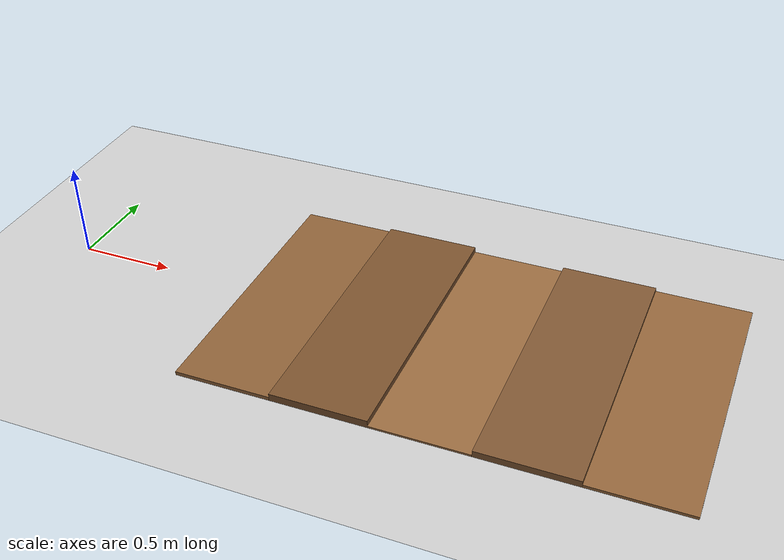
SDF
<?xml version="1.0"?>
<sdf version="1.6">
  <world name="uneven_10_40mm">
    <gravity>0 0 -9.81</gravity>
    <physics name="default_physics" default="0" type="ode">
      <max_step_size>0.001</max_step_size>
      <real_time_update_rate>1000</real_time_update_rate>
      <ode>
        <solver><type>quick</type><iters>100</iters><sor>1.3</sor><use_dynamic_moi_rescaling>true</use_dynamic_moi_rescaling></solver>
        <constraints><cfm>0.0</cfm><erp>0.2</erp><contact_max_correcting_vel>0.1</contact_max_correcting_vel><contact_surface_layer>0.001</contact_surface_layer></constraints>
      </ode>
    </physics>
    <include><uri>model://ground_plane</uri></include>
    <include><uri>model://sun</uri></include>
    <model name="uneven_20mm"><static>true</static><pose>1.25 0 0.010 0 0 0</pose><link name="link"><collision name="collision"><geometry><box><size>0.50 1.50 0.02</size></box></geometry></collision><visual name="visual"><geometry><box><size>0.50 1.50 0.02</size></box></geometry><material><ambient>0.55 0.38 0.22 1</ambient></material></visual></link></model>
    <model name="uneven_40mm"><static>true</static><pose>1.75 0 0.020 0 0 0</pose><link name="link"><collision name="collision"><geometry><box><size>0.50 1.50 0.04</size></box></geometry></collision><visual name="visual"><geometry><box><size>0.50 1.50 0.04</size></box></geometry><material><ambient>0.48 0.32 0.18 1</ambient></material></visual></link></model>
    <model name="uneven_10mm"><static>true</static><pose>2.25 0 0.005 0 0 0</pose><link name="link"><collision name="collision"><geometry><box><size>0.50 1.50 0.01</size></box></geometry></collision><visual name="visual"><geometry><box><size>0.50 1.50 0.01</size></box></geometry><material><ambient>0.60 0.42 0.25 1</ambient></material></visual></link></model>
    <model name="uneven_35mm"><static>true</static><pose>2.75 0 0.0175 0 0 0</pose><link name="link"><collision name="collision"><geometry><box><size>0.50 1.50 0.035</size></box></geometry></collision><visual name="visual"><geometry><box><size>0.50 1.50 0.035</size></box></geometry><material><ambient>0.50 0.34 0.20 1</ambient></material></visual></link></model>
    <model name="uneven_15mm"><static>true</static><pose>3.25 0 0.0075 0 0 0</pose><link name="link"><collision name="collision"><geometry><box><size>0.50 1.50 0.015</size></box></geometry></collision><visual name="visual"><geometry><box><size>0.50 1.50 0.015</size></box></geometry><material><ambient>0.58 0.40 0.23 1</ambient></material></visual></link></model>
  </world>
</sdf>
